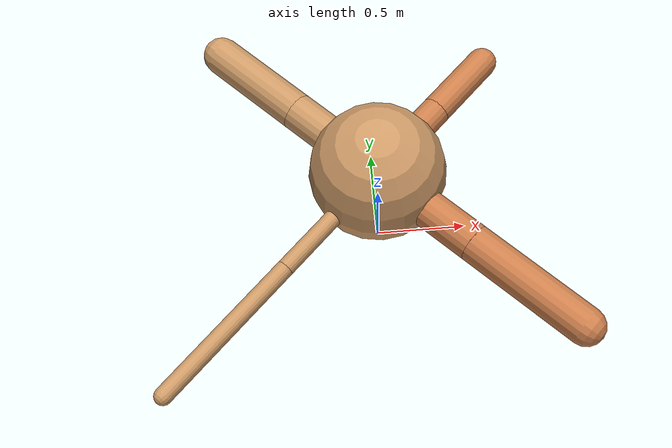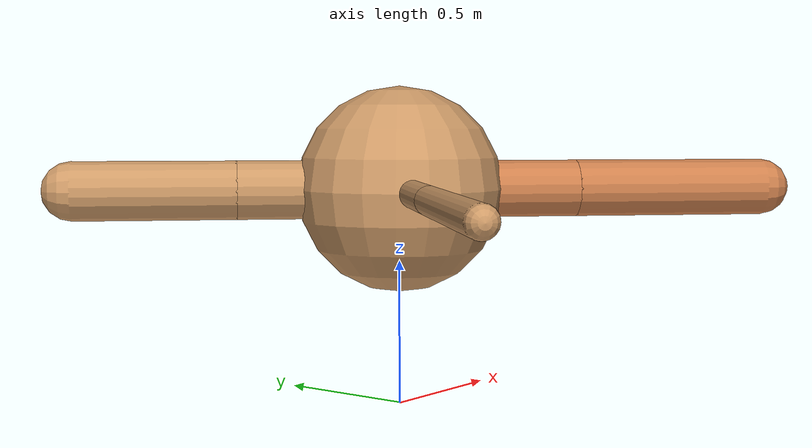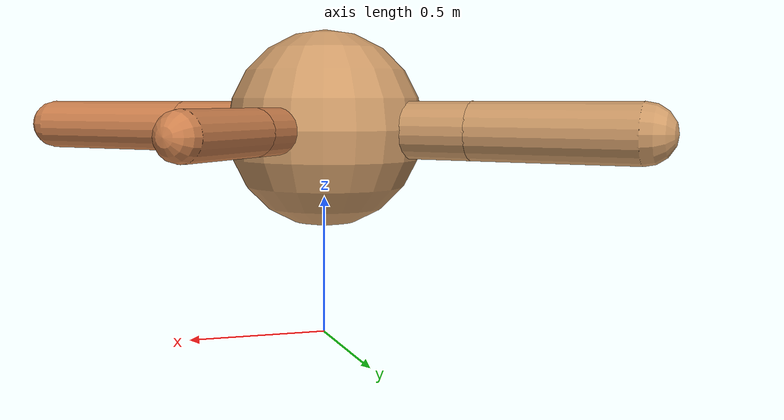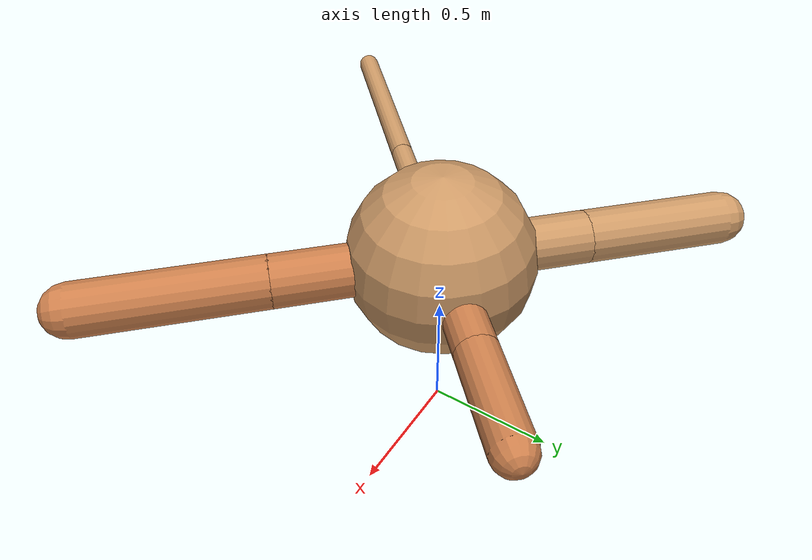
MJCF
<?xml version="1.0" ?>
<mujoco model="ant">

	<compiler angle="degree" coordinate="local" inertiafromgeom="true"/>

	<option integrator="RK4" timestep="0.01"/>

	<custom>

		<numeric data="0.0 0.0 0.55 1.0 0.0 0.0 0.0 0.0 1.0 0.0 -1.0 0.0 -1.0 0.0 1.0" name="init_qpos"/>

	</custom>

	<default>

		<joint armature="1" damping="1" limited="true"/>

		<geom conaffinity="0" condim="3" density="5.0" friction="1.5 0.1 0.1" margin="0.01" rgba="0.8 0.6 0.4 1"/>

	</default>

	<worldbody>

		<body name="torso" pos="0 0 0.75">

			<geom name="torso_geom" pos="0 0 0" size="0.3554427003848465" type="sphere"/>

			<!--joint armature="0" damping="0" limited="false" margin="0.01" name="root" pos="0 0 0" type="free"/-->

			<body name="front_left_leg" pos="0 0 0">

				<geom fromto="0 0 0 0.2 0.2 0" name="aux_1_geom" size="0.07956249780113417" type="capsule" rgba=".8 .5 .3 1"/>

				<body name="aux_1" pos="0.2 0.2 0">

					<joint axis="0 0 1" name="hip_1" pos="0.0 0.0 0.0" range="-40 40" type="hinge"/>

					<geom fromto="0 0 0 0.13925946643363157 0.13925946643363157 0" name="left_leg_geom" size="0.07956249780113417" type="capsule" rgba=".8 .5 .3 1"/>

					<body pos="0.13925946643363157 0.13925946643363157 0" name="front_left_foot">

						<joint axis="-1 1 0" name="ankle_1" pos="0.0 0.0 0.0" range="30 100" type="hinge"/>

						<geom fromto="0 0 0 0.27851893286726315 0.27851893286726315 0" name="left_ankle_geom" size="0.07956249780113417" type="capsule" rgba=".8 .5 .3 1"/>

					</body>

				</body>

			</body>

			<body name="front_right_leg" pos="0 0 0">

				<geom fromto="0 0 0 -0.2 0.2 0" name="aux_2_geom" size="0.10087623321240863" type="capsule"/>

				<body name="aux_2" pos="-0.2 0.2 0">

					<joint axis="0 0 1" name="hip_2" pos="0.0 0.0 0.0" range="-40 40" type="hinge"/>

					<geom fromto="0 0 0 -0.19379477042073046 0.19379477042073046 0" name="right_leg_geom" size="0.10087623321240863" type="capsule"/>

					<body pos="-0.19379477042073046 0.19379477042073046 0" name="front_right_foot">

						<joint axis="1 1 0" name="ankle_2" pos="0.0 0.0 0.0" range="-100 -30" type="hinge"/>

						<geom fromto="0 0 0 -0.3875895408414609 0.3875895408414609 0" name="right_ankle_geom" size="0.10087623321240863" type="capsule"/>

					</body>

				</body>

			</body>

			<body name="left_back_leg" pos="0 0 0">

				<geom fromto="0 0 0 -0.2 -0.2 0" name="aux_3_geom" size="0.04553765638782736" type="capsule"/>

				<body name="aux_3" pos="-0.2 -0.2 0">

					<joint axis="0 0 1" name="hip_3" pos="0.0 0.0 0.0" range="-40 40" type="hinge"/>

					<geom fromto="0 0 0 -0.29724849876150555 -0.29724849876150555 0" name="back_leg_geom" size="0.04553765638782736" type="capsule"/>

					<body pos="-0.29724849876150555 -0.29724849876150555 0" name="left_back_foot">

						<joint axis="-1 1 0" name="ankle_3" pos="0.0 0.0 0.0" range="-100 -30" type="hinge"/>

						<geom fromto="0 0 0 -0.5944969975230111 -0.5944969975230111 0" name="third_ankle_geom" size="0.04553765638782736" type="capsule"/>

					</body>

				</body>

			</body>

			<body name="right_back_leg" pos="0 0 0">

				<geom fromto="0 0 0 0.2 -0.2 0" name="aux_4_geom" size="0.09927925044181665" type="capsule" rgba=".8 .5 .3 1"/>

				<body name="aux_4" pos="0.2 -0.2 0">

					<joint axis="0 0 1" name="hip_4" pos="0.0 0.0 0.0" range="-40 40" type="hinge"/>

					<geom fromto="0 0 0 0.240711603294201 -0.240711603294201 0" name="rightback_leg_geom" size="0.09927925044181665" type="capsule" rgba=".8 .5 .3 1"/>

					<body pos="0.240711603294201 -0.240711603294201 0" name="right_back_foot">

						<joint axis="1 1 0" name="ankle_4" pos="0.0 0.0 0.0" range="30 100" type="hinge"/>

						<geom fromto="0 0 0 0.481423206588402 -0.481423206588402 0" name="fourth_ankle_geom" size="0.09927925044181665" type="capsule" rgba=".8 .5 .3 1"/>

					</body>

				</body>

			</body>

		</body>

	</worldbody>

	<actuator>

		<motor ctrllimited="true" ctrlrange="-1.0 1.0" joint="hip_4" gear="150"/>

		<motor ctrllimited="true" ctrlrange="-1.0 1.0" joint="ankle_4" gear="150"/>

		<motor ctrllimited="true" ctrlrange="-1.0 1.0" joint="hip_1" gear="150"/>

		<motor ctrllimited="true" ctrlrange="-1.0 1.0" joint="ankle_1" gear="150"/>

		<motor ctrllimited="true" ctrlrange="-1.0 1.0" joint="hip_2" gear="150"/>

		<motor ctrllimited="true" ctrlrange="-1.0 1.0" joint="ankle_2" gear="150"/>

		<motor ctrllimited="true" ctrlrange="-1.0 1.0" joint="hip_3" gear="150"/>

		<motor ctrllimited="true" ctrlrange="-1.0 1.0" joint="ankle_3" gear="150"/>

	</actuator>

</mujoco>
